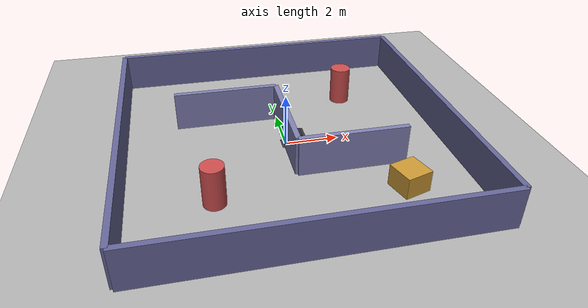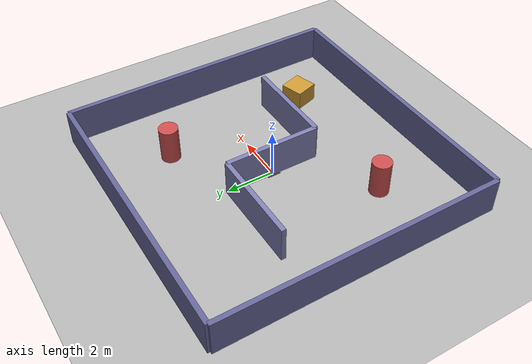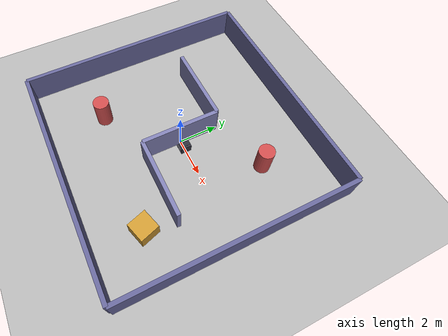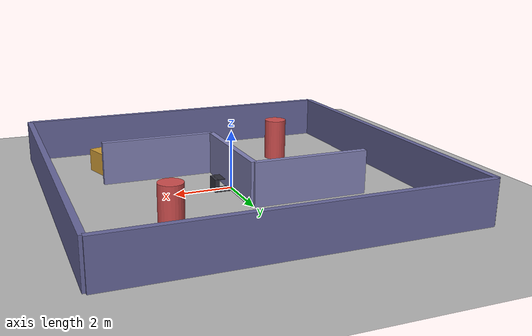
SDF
<?xml version="1.0" ?>
<sdf version="1.8">
  <world name="obstacle_world">
    <physics name="5ms" type="ignored">
      <max_step_size>0.005</max_step_size>
      <real_time_factor>1.0</real_time_factor>
    </physics>

    <!-- World Systems Plugins -->
    <plugin filename="gz-sim-physics-system" name="gz::sim::systems::Physics" />
    <plugin filename="gz-sim-user-commands-system" name="gz::sim::systems::UserCommands" />
    <plugin filename="gz-sim-scene-broadcaster-system" name="gz::sim::systems::SceneBroadcaster" />
    <plugin filename="gz-sim-sensors-system" name="gz::sim::systems::Sensors">
      <render_engine>ogre2</render_engine>
    </plugin>
    <plugin filename="gz-sim-imu-system" name="gz::sim::systems::Imu" />
    <plugin filename="gz-sim-contact-system" name="gz::sim::systems::Contact" />

    <!-- Lighting -->
    <light type="directional" name="sun">
      <cast_shadows>false</cast_shadows>
      <pose>0 0 10 0 0 0</pose>
      <diffuse>0.8 0.8 0.8 1</diffuse>
      <specular>0.2 0.2 0.2 1</specular>
      <direction>-0.5 0.1 -0.9</direction>
    </light>

    <!-- Ground Plane -->
    <model name="floor">
      <static>true</static>
      <link name="link">
        <collision name="collision">
          <geometry><plane><normal>0 0 1</normal><size>25 25</size></plane></geometry>
          <surface><friction><ode><mu>1.0</mu><mu2>1.0</mu2></ode></friction></surface>
        </collision>
        <visual name="visual">
          <geometry><plane><normal>0 0 1</normal><size>25 25</size></plane></geometry>
          <material><ambient>0.7 0.7 0.7 1</ambient><diffuse>0.7 0.7 0.7 1</diffuse></material>
        </visual>
      </link>
    </model>

    <!-- Outer Enclosure (12m x 12m) -->
    <model name="wall_n"><static>true</static><pose>0 6 0.75 0 0 0</pose><link name="l"><collision name="c"><geometry><box><size>12 0.2 1.5</size></box></geometry></collision><visual name="v"><geometry><box><size>12 0.2 1.5</size></box></geometry><material><ambient>0.4 0.4 0.6 1</ambient><diffuse>0.4 0.4 0.6 1</diffuse></material></visual></link></model>
    <model name="wall_s"><static>true</static><pose>0 -6 0.75 0 0 0</pose><link name="l"><collision name="c"><geometry><box><size>12 0.2 1.5</size></box></geometry></collision><visual name="v"><geometry><box><size>12 0.2 1.5</size></box></geometry><material><ambient>0.4 0.4 0.6 1</ambient><diffuse>0.4 0.4 0.6 1</diffuse></material></visual></link></model>
    <model name="wall_e"><static>true</static><pose>6 0 0.75 0 0 0</pose><link name="l"><collision name="c"><geometry><box><size>0.2 12 1.5</size></box></geometry></collision><visual name="v"><geometry><box><size>0.2 12 1.5</size></box></geometry><material><ambient>0.4 0.4 0.6 1</ambient><diffuse>0.4 0.4 0.6 1</diffuse></material></visual></link></model>
    <model name="wall_w"><static>true</static><pose>-6 0 0.75 0 0 0</pose><link name="l"><collision name="c"><geometry><box><size>0.2 12 1.5</size></box></geometry></collision><visual name="v"><geometry><box><size>0.2 12 1.5</size></box></geometry><material><ambient>0.4 0.4 0.6 1</ambient><diffuse>0.4 0.4 0.6 1</diffuse></material></visual></link></model>

    <!-- Internal Partition Walls -->
    <model name="inner_wall_1"><static>true</static><pose>-2 2 0.75 0 0 0</pose><link name="l"><collision name="c"><geometry><box><size>4 0.2 1.5</size></box></geometry></collision><visual name="v"><geometry><box><size>4 0.2 1.5</size></box></geometry><material><ambient>0.5 0.5 0.7 1</ambient><diffuse>0.5 0.5 0.7 1</diffuse></material></visual></link></model>
    <model name="inner_wall_2"><static>true</static><pose>2 -2 0.75 0 0 0</pose><link name="l"><collision name="c"><geometry><box><size>4 0.2 1.5</size></box></geometry></collision><visual name="v"><geometry><box><size>4 0.2 1.5</size></box></geometry><material><ambient>0.5 0.5 0.7 1</ambient><diffuse>0.5 0.5 0.7 1</diffuse></material></visual></link></model>
    <model name="inner_wall_3"><static>true</static><pose>0 0 0.75 0 0 1.5708</pose><link name="l"><collision name="c"><geometry><box><size>4 0.2 1.5</size></box></geometry></collision><visual name="v"><geometry><box><size>4 0.2 1.5</size></box></geometry><material><ambient>0.5 0.5 0.7 1</ambient><diffuse>0.5 0.5 0.7 1</diffuse></material></visual></link></model>

    <!-- Obstacles (Pillars / Boxes) -->
    <model name="pillar_1"><static>true</static><pose>3 3 0.75 0 0 0</pose><link name="l"><collision name="c"><geometry><cylinder><radius>0.4</radius><length>1.5</length></cylinder></geometry></collision><visual name="v"><geometry><cylinder><radius>0.4</radius><length>1.5</length></cylinder></geometry><material><ambient>0.8 0.3 0.3 1</ambient><diffuse>0.8 0.3 0.3 1</diffuse></material></visual></link></model>
    <model name="pillar_2"><static>true</static><pose>-3 -3 0.75 0 0 0</pose><link name="l"><collision name="c"><geometry><cylinder><radius>0.4</radius><length>1.5</length></cylinder></geometry></collision><visual name="v"><geometry><cylinder><radius>0.4</radius><length>1.5</length></cylinder></geometry><material><ambient>0.8 0.3 0.3 1</ambient><diffuse>0.8 0.3 0.3 1</diffuse></material></visual></link></model>
    <model name="box_1"><static>true</static><pose>3.5 -3.5 0.4 0 0 0.3</pose><link name="l"><collision name="c"><geometry><box><size>1.0 1.0 0.8</size></box></geometry></collision><visual name="v"><geometry><box><size>1.0 1.0 0.8</size></box></geometry><material><ambient>0.8 0.6 0.2 1</ambient><diffuse>0.8 0.6 0.2 1</diffuse></material></visual></link></model>
    <!-- Charging Station / Base Station Dock (Head-First Docking) -->
    <model name="docking_station">
      <static>true</static>
      <pose>0.0 0.0 0.0 0 0 0</pose>
      <link name="station_link">
        <!-- Base Parking Tray (visual on ground) -->
        <visual name="vis_tray">
          <pose>0.20 0.0 0.005 0 0 0</pose>
          <geometry><box><size>0.75 0.55 0.01</size></box></geometry>
          <material><ambient>0.2 0.2 0.22 1</ambient><diffuse>0.25 0.25 0.28 1</diffuse></material>
        </visual>

        <!-- Station Tower (in front of robot head) -->
        <collision name="col_tower">
          <pose>0.60 0.0 0.22 0 0 0</pose>
          <geometry><box><size>0.15 0.55 0.44</size></box></geometry>
        </collision>
        <visual name="vis_tower">
          <pose>0.60 0.0 0.22 0 0 0</pose>
          <geometry><box><size>0.15 0.55 0.44</size></box></geometry>
          <material><ambient>0.15 0.15 0.18 1</ambient><diffuse>0.2 0.2 0.25 1</diffuse></material>
        </visual>

        <!-- Canopy / Roof Overhang -->
        <visual name="vis_roof">
          <pose>0.45 0.0 0.44 0 0 0</pose>
          <geometry><box><size>0.25 0.55 0.02</size></box></geometry>
          <material><ambient>0.12 0.12 0.15 1</ambient><diffuse>0.18 0.18 0.22 1</diffuse></material>
        </visual>

        <!-- AprilTag Visual Target (exact 0.141m / 141mm matching physical tag) -->
        <visual name="vis_apriltag">
          <pose>0.523 0.0 0.26 0 0 0</pose>
          <geometry>
            <box>
              <size>0.002 0.141 0.141</size>
            </box>
          </geometry>
          <material>
            <ambient>1 1 1 1</ambient>
            <diffuse>1 1 1 1</diffuse>
            <pbr>
              <metal>
                <albedo_map>model://Apriltag36_11_00000/materials/textures/tag36_11_00000.png</albedo_map>
                <roughness>0.9</roughness>
                <metalness>0.0</metalness>
              </metal>
            </pbr>
            <script>
              <uri>model://Apriltag36_11_00000/materials/scripts</uri>
              <uri>model://Apriltag36_11_00000/materials/textures</uri>
              <name>Apriltag36_11_00000</name>
            </script>
          </material>
        </visual>

        <!-- Charging Contacts (facing robot front bumper) -->
        <visual name="vis_contact_left">
          <pose>0.52 0.06 0.12 0 0 0</pose>
          <geometry><box><size>0.015 0.03 0.06</size></box></geometry>
          <material><ambient>0.9 0.7 0.1 1</ambient><diffuse>1.0 0.8 0.2 1</diffuse></material>
        </visual>
        <visual name="vis_contact_right">
          <pose>0.52 -0.06 0.12 0 0 0</pose>
          <geometry><box><size>0.015 0.03 0.06</size></box></geometry>
          <material><ambient>0.9 0.7 0.1 1</ambient><diffuse>1.0 0.8 0.2 1</diffuse></material>
        </visual>
      </link>
    </model>

  </world>
</sdf>
